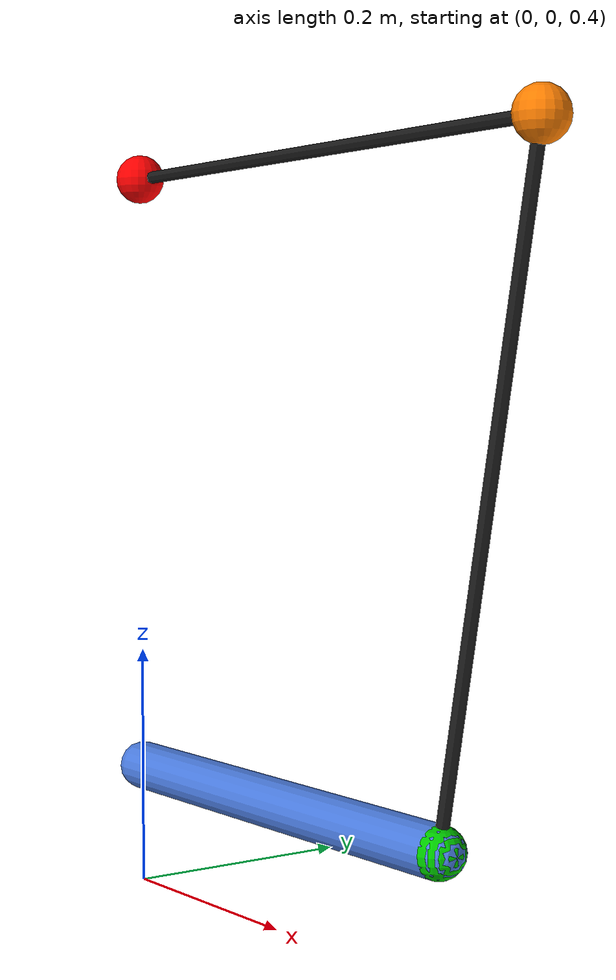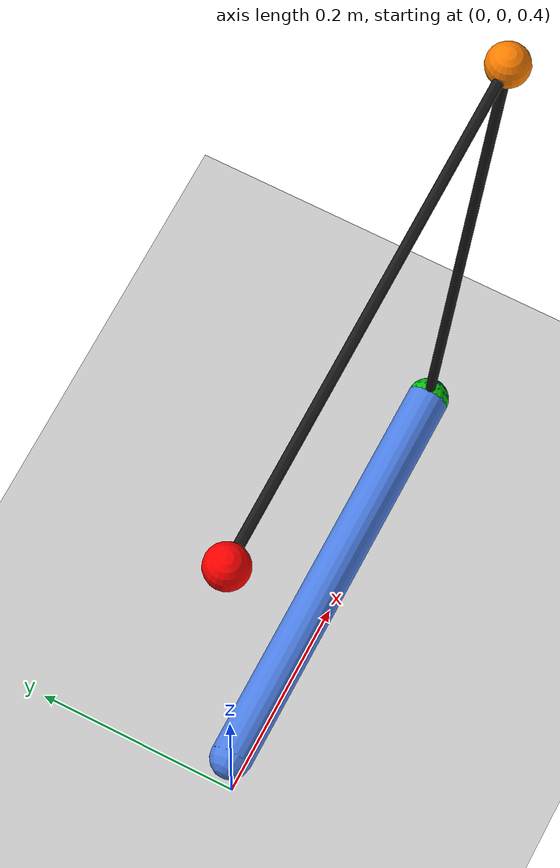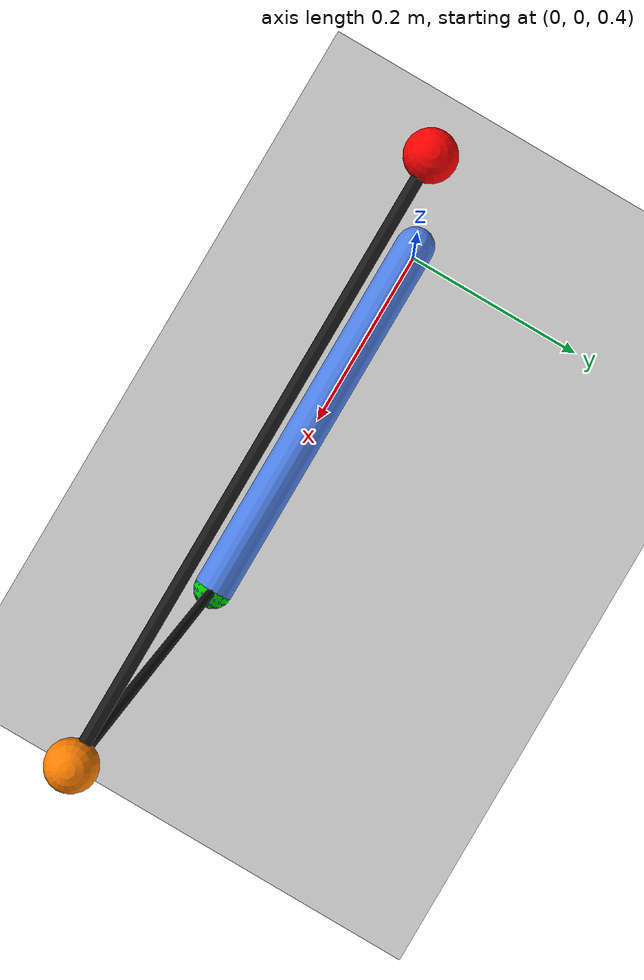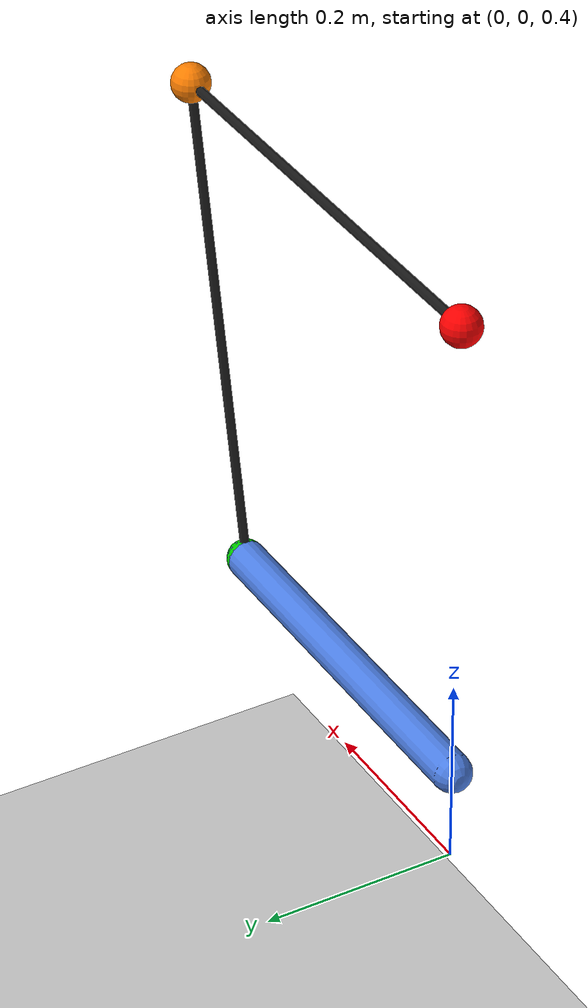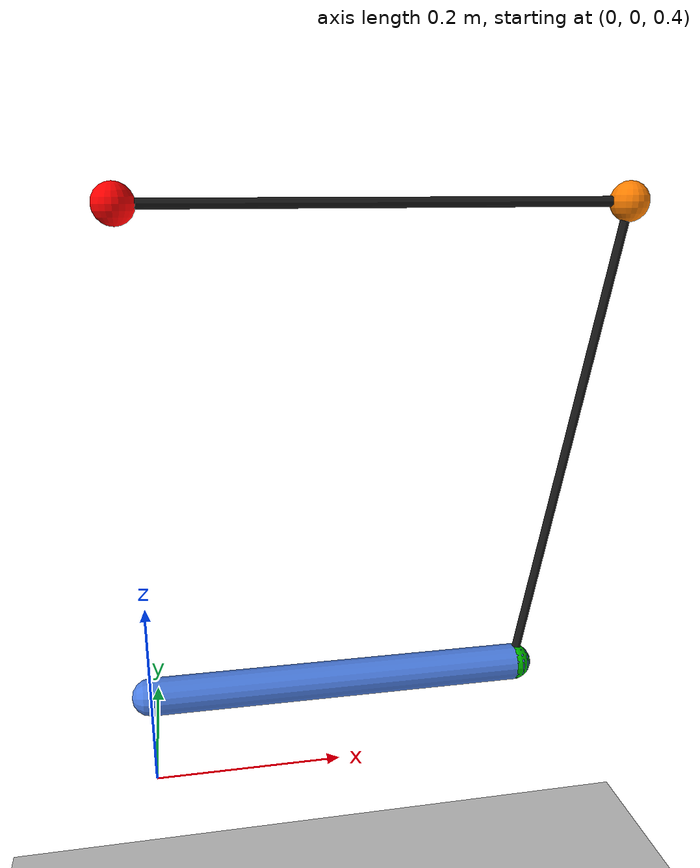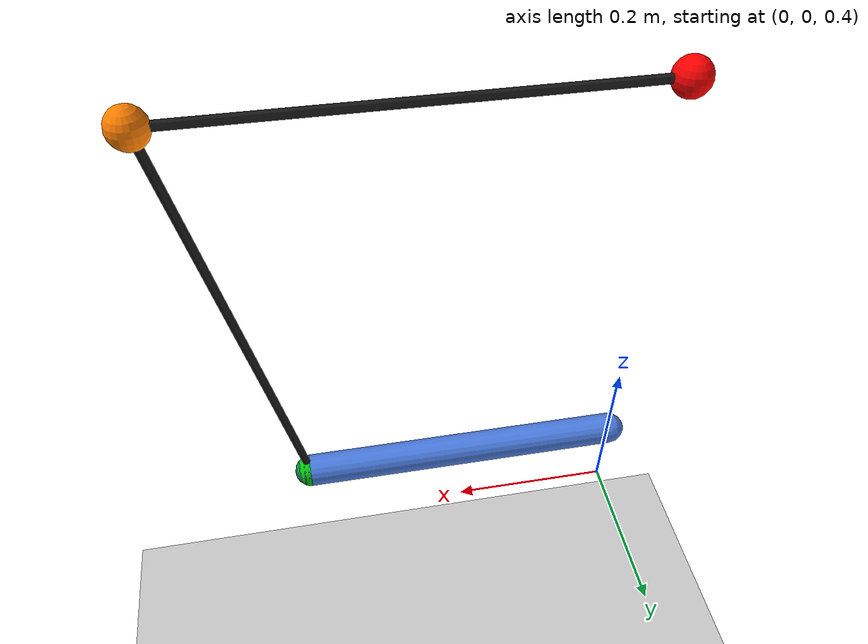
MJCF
<mujoco model="pendulum_cable_intro">
  <option timestep="0.005" gravity="0 0 -9.81"/>  <!-- 5 ms timestep: stable for stiffness=100 -->

  <worldbody>
    <!-- Floor for visual reference -->
    <geom name="floor" type="plane" size="2 2 0.1" pos="0 0 0" rgba="0.8 0.8 0.8 1"/>
    <!-- Directional light for rendering -->
    <light name="main_light" pos="0 0 3" dir="0 0 -1" diffuse="1 1 1"/>

    <!-- Ceiling anchor site: fixed worldbody attachment for cable start -->
    <site name="anchor" pos="0 0 1.0" size="0.02" rgba="1 0 0 1"/>  <!-- red: cable start -->

    <!-- Via-point site: fixed corner that redirects the cable path -->
    <site name="via" pos="0.5 0 1.0" size="0.02" rgba="1 0.5 0 1"/>  <!-- orange: via-point -->

    <!-- Pendulum body: capsule rod pinned at world origin by y-axis hinge -->
    <body name="rod" pos="0 0 0.5">  <!-- pivot at z=0.5 (mid-height) -->
      <!-- Hinge joint: rotates in the x-z plane (axis = y-axis) -->
      <joint name="hinge" type="hinge" axis="0 1 0" damping="0.05"/>  <!-- small damping for free swing -->
      <!-- Capsule geom: extends from body origin to (0.4, 0, 0) -->
      <geom name="rod_geom" type="capsule" fromto="0 0 0  0.4 0 0"
            size="0.02" mass="0.3" rgba="0.3 0.5 0.9 1"/>  <!-- blue rod -->
      <!-- Tip site: cable attachment at the free end of the rod -->
      <site name="tip" pos="0.4 0 0" size="0.02" rgba="0 0.8 0 1"/>  <!-- green: cable end -->
    </body>
  </worldbody>

  <tendon>
    <!-- Spatial tendon: cable routed anchor -> via -> tip -->
    <!-- stiffness=100 N/m; springlength deadband makes it tension-only -->
    <!-- springlength="0 L_natural": zero force when L <= L_natural (slack), -->
    <!--   pulling force = stiffness * (L - L_natural) when L > L_natural (taut) -->
    <spatial name="intro_cable" stiffness="100" springlength="0 1.0099"
             width="0.005" rgba="0.1 0.1 0.1 1">  <!-- thin black cable -->
      <site site="anchor"/>  <!-- 1st: ceiling attachment (fixed worldbody) -->
      <site site="via"/>     <!-- 2nd: corner redirect (fixed worldbody) -->
      <site site="tip"/>     <!-- 3rd: pendulum tip (body-attached, moves with rod) -->
    </spatial>
  </tendon>
</mujoco>
